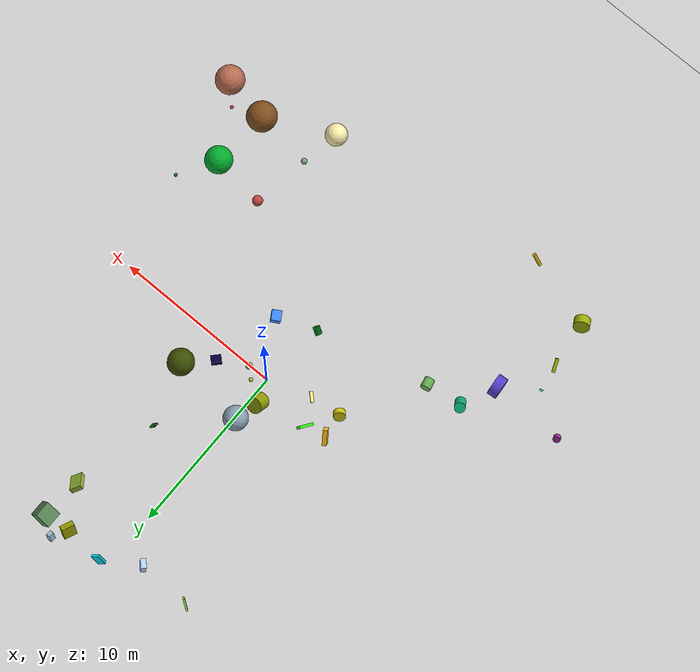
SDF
<?xml version="1.0" ?>
<sdf version="1.6">
  <world name="default">
    <atmosphere type="adiabatic"/>
    <light name="group/sun" type="directional">
      <direction>-0.5 0.1 -0.9</direction>
      <attenuation>
        <range>1000.0</range>
        <quadratic>0.001</quadratic>
        <constant>0.9</constant>
        <linear>0.01</linear>
      </attenuation>
      <pose frame="">0 0 20 0 -0 0</pose>
      <cast_shadows>1</cast_shadows>
      <specular>0.2 0.2 0.2 1</specular>
      <diffuse>0.8 0.8 0.8 1.0</diffuse>
    </light>
    <gravity>0 0 -9.8</gravity>
    <model name="cylinder">
      <allow_auto_disable>0</allow_auto_disable>
      <static>0</static>
      <pose frame="">-6.93001 -5.45701 0.344994 -1.85684 0.909253 3.14159</pose>
      <link name="link">
        <kinematic>0</kinematic>
        <inertial>
          <pose frame="">0 0 0 0 -0 0</pose>
          <mass>0.1</mass>
          <inertia>
            <ixz>0.0</ixz>
            <ixx>0.00507687553037</ixx>
            <ixy>0.0</ixy>
            <izz>0.00448108488609</izz>
            <iyy>0.00507687553037</iyy>
            <iyz>0.0</iyz>
          </inertia>
        </inertial>
        <pose frame="">0 0 0 0 -0 0</pose>
        <gravity>1</gravity>
        <self_collide>0</self_collide>
        <collision name="collision">
          <geometry>
            <cylinder>
              <length>0.583403779967</length>
              <radius>0.299368832248</radius>
            </cylinder>
          </geometry>
          <max_contacts>20</max_contacts>
          <pose frame="">0 0 0 0 -0 0</pose>
        </collision>
        <visual name="visual">
          <geometry>
            <cylinder>
              <length>0.583403779967</length>
              <radius>0.299368832248</radius>
            </cylinder>
          </geometry>
          <material>
            <diffuse>0.388235294118 0.662745098039 0.313725490196 1</diffuse>
            <ambient>0.388235 0.662745 0.313725 1</ambient>
          </material>
          <cast_shadows>1</cast_shadows>
          <transparency>0.0</transparency>
          <pose frame="">0 0 0 0 -0 0</pose>
        </visual>
      </link>
      <self_collide>0</self_collide>
    </model>
    <model name="cuboid">
      <allow_auto_disable>0</allow_auto_disable>
      <static>0</static>
      <pose frame="">0.580374 13.4447 0.536732 -2.78135 -0.267707 2.12915</pose>
      <link name="link">
        <kinematic>0</kinematic>
        <inertial>
          <pose frame="">0 0 0 0 -0 0</pose>
          <mass>0.529006352331</mass>
          <inertia>
            <ixz>0.0</ixz>
            <ixx>0.0506313129869</ixx>
            <ixy>0.0</ixy>
            <izz>0.00977626473644</izz>
            <iyy>0.0430985198141</iyy>
            <iyz>0.0</iyz>
          </inertia>
        </inertial>
        <pose frame="">0 0 0 0 -0 0</pose>
        <gravity>1</gravity>
        <self_collide>0</self_collide>
        <collision name="collision">
          <geometry>
            <box>
              <size>0.159516 0.44308 0.975809</size>
            </box>
          </geometry>
          <max_contacts>20</max_contacts>
          <pose frame="">0 0 0 0 -0 0</pose>
        </collision>
        <visual name="visual">
          <geometry>
            <box>
              <size>0.159516 0.44308 0.975809</size>
            </box>
          </geometry>
          <material>
            <diffuse>0.0078431372549 0.847058823529 0.913725490196 1</diffuse>
            <ambient>0.00784314 0.847059 0.913725 1</ambient>
          </material>
          <cast_shadows>1</cast_shadows>
          <transparency>0.0</transparency>
          <pose frame="">0 0 0 0 -0 0</pose>
        </visual>
      </link>
      <self_collide>0</self_collide>
    </model>
    <model name="cuboid_7">
      <allow_auto_disable>0</allow_auto_disable>
      <static>0</static>
      <pose frame="">4.36679 13.4451 0.642612 1.39601 0.503686 3.08399</pose>
      <link name="link">
        <kinematic>0</kinematic>
        <inertial>
          <pose frame="">0 0 0 0 -0 0</pose>
          <mass>0.1</mass>
          <inertia>
            <ixz>0.0</ixz>
            <ixx>0.0126403351712</ixx>
            <ixy>0.0</ixy>
            <izz>0.0129548047615</izz>
            <iyy>0.0156123974717</iyy>
            <iyz>0.0</iyz>
          </inertia>
        </inertial>
        <pose frame="">0 0 0 0 -0 0</pose>
        <gravity>1</gravity>
        <self_collide>0</self_collide>
        <collision name="collision">
          <geometry>
            <box>
              <size>0.977554 0.773928 0.958058</size>
            </box>
          </geometry>
          <max_contacts>20</max_contacts>
          <pose frame="">0 0 0 0 -0 0</pose>
        </collision>
        <visual name="visual">
          <geometry>
            <box>
              <size>0.977554 0.773928 0.958058</size>
            </box>
          </geometry>
          <material>
            <diffuse>0.349019607843 0.521568627451 0.337254901961 1</diffuse>
            <ambient>0.34902 0.521569 0.337255 1</ambient>
          </material>
          <cast_shadows>1</cast_shadows>
          <transparency>0.0</transparency>
          <pose frame="">0 0 0 0 -0 0</pose>
        </visual>
      </link>
      <self_collide>0</self_collide>
    </model>
    <model name="cuboid_6">
      <allow_auto_disable>0</allow_auto_disable>
      <static>0</static>
      <pose frame="">-4.57856 12.2801 0.362895 -1.50003 -1.08608 2.45211</pose>
      <link name="link">
        <kinematic>0</kinematic>
        <inertial>
          <pose frame="">0 0 0 0 -0 0</pose>
          <mass>0.287173806674</mass>
          <inertia>
            <ixz>0.0</ixz>
            <ixx>0.0119539335067</ixx>
            <ixy>0.0</ixy>
            <izz>0.0165521025375</izz>
            <iyy>0.00504706651455</iyy>
            <iyz>0.0</iyz>
          </inertia>
        </inertial>
        <pose frame="">0 0 0 0 -0 0</pose>
        <gravity>1</gravity>
        <self_collide>0</self_collide>
        <collision name="collision">
          <geometry>
            <box>
              <size>0.44891 0.700096 0.0968449</size>
            </box>
          </geometry>
          <max_contacts>20</max_contacts>
          <pose frame="">0 0 0 0 -0 0</pose>
        </collision>
        <visual name="visual">
          <geometry>
            <box>
              <size>0.44891 0.700096 0.0968449</size>
            </box>
          </geometry>
          <material>
            <diffuse>0.556862745098 0.898039215686 0.247058823529 1</diffuse>
            <ambient>0.556863 0.898039 0.247059 1</ambient>
          </material>
          <cast_shadows>1</cast_shadows>
          <transparency>0.0</transparency>
          <pose frame="">0 0 0 0 -0 0</pose>
        </visual>
      </link>
      <self_collide>0</self_collide>
    </model>
    <model name="cuboid_5">
      <allow_auto_disable>0</allow_auto_disable>
      <static>0</static>
      <pose frame="">3.08966 5.94231 0.332177 1.63594 0.45551 1.3895</pose>
      <link name="link">
        <kinematic>0</kinematic>
        <inertial>
          <pose frame="">0 0 0 0 -0 0</pose>
          <mass>0.982979262347</mass>
          <inertia>
            <ixz>0.0</ixz>
            <ixx>0.0309987722369</ixx>
            <ixy>0.0</ixy>
            <izz>0.0356702893538</izz>
            <iyy>0.00659763368988</iyy>
            <iyz>0.0</iyz>
          </inertia>
        </inertial>
        <pose frame="">0 0 0 0 -0 0</pose>
        <gravity>1</gravity>
        <self_collide>0</self_collide>
        <collision name="collision">
          <geometry>
            <box>
              <size>0.26227 0.605532 0.108429</size>
            </box>
          </geometry>
          <max_contacts>20</max_contacts>
          <pose frame="">0 0 0 0 -0 0</pose>
        </collision>
        <visual name="visual">
          <geometry>
            <box>
              <size>0.26227 0.605532 0.108429</size>
            </box>
          </geometry>
          <material>
            <diffuse>0.0156862745098 0.290196078431 0.0196078431373 1</diffuse>
            <ambient>0.0156863 0.290196 0.0196078 1</ambient>
          </material>
          <cast_shadows>1</cast_shadows>
          <transparency>0.0</transparency>
          <pose frame="">0 0 0 0 -0 0</pose>
        </visual>
      </link>
      <self_collide>0</self_collide>
    </model>
    <model name="cuboid_4">
      <allow_auto_disable>0</allow_auto_disable>
      <static>0</static>
      <pose frame="">2.88187 13.2986 0.470555 -1.3239 -1.00695 -0.593757</pose>
      <link name="link">
        <kinematic>0</kinematic>
        <inertial>
          <pose frame="">0 0 0 0 -0 0</pose>
          <mass>0.377872974586</mass>
          <inertia>
            <ixz>0.0</ixz>
            <ixx>0.0219392592166</ixx>
            <ixy>0.0</ixy>
            <izz>0.0230275994609</izz>
            <iyy>0.0363302419362</iyy>
            <iyz>0.0</iyz>
          </inertia>
        </inertial>
        <pose frame="">0 0 0 0 -0 0</pose>
        <gravity>1</gravity>
        <self_collide>0</self_collide>
        <collision name="collision">
          <geometry>
            <box>
              <size>0.770808 0.370318 0.748053</size>
            </box>
          </geometry>
          <max_contacts>20</max_contacts>
          <pose frame="">0 0 0 0 -0 0</pose>
        </collision>
        <visual name="visual">
          <geometry>
            <box>
              <size>0.770808 0.370318 0.748053</size>
            </box>
          </geometry>
          <material>
            <diffuse>0.572549019608 0.6 0.00392156862745 1</diffuse>
            <ambient>0.572549 0.6 0.00392157 1</ambient>
          </material>
          <cast_shadows>1</cast_shadows>
          <transparency>0.0</transparency>
          <pose frame="">0 0 0 0 -0 0</pose>
        </visual>
      </link>
      <self_collide>0</self_collide>
    </model>
    <model name="cuboid_3">
      <allow_auto_disable>0</allow_auto_disable>
      <static>0</static>
      <pose frame="">-1.46834 12.1439 0.445225 3.02049 -0.141592 2.33851</pose>
      <link name="link">
        <kinematic>0</kinematic>
        <inertial>
          <pose frame="">0 0 0 0 -0 0</pose>
          <mass>0.495479816116</mass>
          <inertia>
            <ixz>0.0</ixz>
            <ixx>0.0295370033184</ixx>
            <ixy>0.0</ixy>
            <izz>0.0170319606236</izz>
            <iyy>0.0387294047357</iyy>
            <iyz>0.0</iyz>
          </inertia>
        </inertial>
        <pose frame="">0 0 0 0 -0 0</pose>
        <gravity>1</gravity>
        <self_collide>0</self_collide>
        <collision name="collision">
          <geometry>
            <box>
              <size>0.563527 0.308112 0.787669</size>
            </box>
          </geometry>
          <max_contacts>20</max_contacts>
          <pose frame="">0 0 0 0 -0 0</pose>
        </collision>
        <visual name="visual">
          <geometry>
            <box>
              <size>0.563527 0.308112 0.787669</size>
            </box>
          </geometry>
          <material>
            <diffuse>0.694117647059 0.819607843137 0.988235294118 1</diffuse>
            <ambient>0.694118 0.819608 0.988235 1</ambient>
          </material>
          <cast_shadows>1</cast_shadows>
          <transparency>0.0</transparency>
          <pose frame="">0 0 0 0 -0 0</pose>
        </visual>
      </link>
      <self_collide>0</self_collide>
    </model>
    <model name="cuboid_2">
      <allow_auto_disable>0</allow_auto_disable>
      <static>0</static>
      <pose frame="">3.40791 14.163 0.326014 0.535984 -1.08211 -0.516917</pose>
      <link name="link">
        <kinematic>0</kinematic>
        <inertial>
          <pose frame="">0 0 0 0 -0 0</pose>
          <mass>0.934717956888</mass>
          <inertia>
            <ixz>0.0</ixz>
            <ixx>0.0137247366548</ixx>
            <ixy>0.0</ixy>
            <izz>0.0295227432888</izz>
            <iyy>0.0274601663073</iyy>
            <iyz>0.0</iyz>
          </inertia>
        </inertial>
        <pose frame="">0 0 0 0 -0 0</pose>
        <gravity>1</gravity>
        <self_collide>0</self_collide>
        <collision name="collision">
          <geometry>
            <box>
              <size>0.52695 0.318339 0.273606</size>
            </box>
          </geometry>
          <max_contacts>20</max_contacts>
          <pose frame="">0 0 0 0 -0 0</pose>
        </collision>
        <visual name="visual">
          <geometry>
            <box>
              <size>0.52695 0.318339 0.273606</size>
            </box>
          </geometry>
          <material>
            <diffuse>0.61568627451 0.737254901961 0.83137254902 1</diffuse>
            <ambient>0.615686 0.737255 0.831373 1</ambient>
          </material>
          <cast_shadows>1</cast_shadows>
          <transparency>0.0</transparency>
          <pose frame="">0 0 0 0 -0 0</pose>
        </visual>
      </link>
      <self_collide>0</self_collide>
    </model>
    <model name="cuboid_1">
      <allow_auto_disable>0</allow_auto_disable>
      <static>0</static>
      <pose frame="">4.2052 11.0437 0.531606 -1.0258 -0.583617 2.24076</pose>
      <link name="link">
        <kinematic>0</kinematic>
        <inertial>
          <pose frame="">0 0 0 0 -0 0</pose>
          <mass>0.695382150924</mass>
          <inertia>
            <ixz>0.0</ixz>
            <ixx>0.0339695223788</ixx>
            <ixy>0.0</ixy>
            <izz>0.0616042057807</izz>
            <iyy>0.0849837000789</iyy>
            <iyz>0.0</iyz>
          </inertia>
        </inertial>
        <pose frame="">0 0 0 0 -0 0</pose>
        <gravity>1</gravity>
        <self_collide>0</self_collide>
        <collision name="collision">
          <geometry>
            <box>
              <size>0.985754 0.302282 0.70344</size>
            </box>
          </geometry>
          <max_contacts>20</max_contacts>
          <pose frame="">0 0 0 0 -0 0</pose>
        </collision>
        <visual name="visual">
          <geometry>
            <box>
              <size>0.985754 0.302282 0.70344</size>
            </box>
          </geometry>
          <material>
            <diffuse>0.564705882353 0.694117647059 0.203921568627 1</diffuse>
            <ambient>0.564706 0.694118 0.203922 1</ambient>
          </material>
          <cast_shadows>1</cast_shadows>
          <transparency>0.0</transparency>
          <pose frame="">0 0 0 0 -0 0</pose>
        </visual>
      </link>
      <self_collide>0</self_collide>
    </model>
    <model name="cylinder_11">
      <allow_auto_disable>0</allow_auto_disable>
      <static>0</static>
      <pose frame="">-0.366086 -3.87402 0.279585 -2.75394 -1.12864 2.22518</pose>
      <link name="link">
        <kinematic>0</kinematic>
        <inertial>
          <pose frame="">0 0 0 0 -0 0</pose>
          <mass>0.1</mass>
          <inertia>
            <ixz>0.0</ixz>
            <ixx>0.00286144263493</ixx>
            <ixy>0.0</ixy>
            <izz>0.00207208020715</izz>
            <iyy>0.00286144263493</iyy>
            <iyz>0.0</iyz>
          </inertia>
        </inertial>
        <pose frame="">0 0 0 0 -0 0</pose>
        <gravity>1</gravity>
        <self_collide>0</self_collide>
        <collision name="collision">
          <geometry>
            <cylinder>
              <length>0.468025964838</length>
              <radius>0.203572110425</radius>
            </cylinder>
          </geometry>
          <max_contacts>20</max_contacts>
          <pose frame="">0 0 0 0 -0 0</pose>
        </collision>
        <visual name="visual">
          <geometry>
            <cylinder>
              <length>0.468025964838</length>
              <radius>0.203572110425</radius>
            </cylinder>
          </geometry>
          <material>
            <diffuse>0.0078431372549 0.349019607843 0.0588235294118 1</diffuse>
            <ambient>0.00784314 0.34902 0.0588235 1</ambient>
          </material>
          <cast_shadows>1</cast_shadows>
          <transparency>0.0</transparency>
          <pose frame="">0 0 0 0 -0 0</pose>
        </visual>
      </link>
      <self_collide>0</self_collide>
    </model>
    <model name="cylinder_10">
      <allow_auto_disable>0</allow_auto_disable>
      <static>0</static>
      <pose frame="">-2.49195 -0.843274 0.116381 -1.47678 -0.956003 -2.39792</pose>
      <link name="link">
        <kinematic>0</kinematic>
        <inertial>
          <pose frame="">0 0 0 0 -0 0</pose>
          <mass>0.957271370767</mass>
          <inertia>
            <ixz>0.0</ixz>
            <ixx>0.0322209341839</ixx>
            <ixy>0.0</ixy>
            <izz>0.00478635685383</izz>
            <iyy>0.0322209341839</iyy>
            <iyz>0.0</iyz>
          </inertia>
        </inertial>
        <pose frame="">0 0 0 0 -0 0</pose>
        <gravity>1</gravity>
        <self_collide>0</self_collide>
        <collision name="collision">
          <geometry>
            <cylinder>
              <length>0.611481576849</length>
              <radius>0.1</radius>
            </cylinder>
          </geometry>
          <max_contacts>20</max_contacts>
          <pose frame="">0 0 0 0 -0 0</pose>
        </collision>
        <visual name="visual">
          <geometry>
            <cylinder>
              <length>0.611481576849</length>
              <radius>0.1</radius>
            </cylinder>
          </geometry>
          <material>
            <diffuse>0.988235294118 0.964705882353 0.474509803922 1</diffuse>
            <ambient>0.988235 0.964706 0.47451 1</ambient>
          </material>
          <cast_shadows>1</cast_shadows>
          <transparency>0.0</transparency>
          <pose frame="">0 0 0 0 -0 0</pose>
        </visual>
      </link>
      <self_collide>0</self_collide>
    </model>
    <model name="cuboid_9">
      <allow_auto_disable>0</allow_auto_disable>
      <static>0</static>
      <pose frame="">2.82684 0.980504 0.384691 0.8536 -1.5539 -1.59805</pose>
      <link name="link">
        <kinematic>0</kinematic>
        <inertial>
          <pose frame="">0 0 0 0 -0 0</pose>
          <mass>0.414218791604</mass>
          <inertia>
            <ixz>0.0</ixz>
            <ixx>0.0177186184046</ixx>
            <ixy>0.0</ixy>
            <izz>0.0315786744776</izz>
            <iyy>0.025747798483</iyy>
            <iyz>0.0</iyz>
          </inertia>
        </inertial>
        <pose frame="">0 0 0 0 -0 0</pose>
        <gravity>1</gravity>
        <self_collide>0</self_collide>
        <collision name="collision">
          <geometry>
            <box>
              <size>0.757445 0.584052 0.414964</size>
            </box>
          </geometry>
          <max_contacts>20</max_contacts>
          <pose frame="">0 0 0 0 -0 0</pose>
        </collision>
        <visual name="visual">
          <geometry>
            <box>
              <size>0.757445 0.584052 0.414964</size>
            </box>
          </geometry>
          <material>
            <diffuse>0.0078431372549 0.0 0.207843137255 1</diffuse>
            <ambient>0.00784314 0 0.207843 1</ambient>
          </material>
          <cast_shadows>1</cast_shadows>
          <transparency>0.0</transparency>
          <pose frame="">0 0 0 0 -0 0</pose>
        </visual>
      </link>
      <self_collide>0</self_collide>
    </model>
    <model name="cuboid_8">
      <allow_auto_disable>0</allow_auto_disable>
      <static>0</static>
      <pose frame="">-3.29062 0.680449 0.475551 1.40354 0.15515 2.53182</pose>
      <link name="link">
        <kinematic>0</kinematic>
        <inertial>
          <pose frame="">0 0 0 0 -0 0</pose>
          <mass>0.242392414289</mass>
          <inertia>
            <ixz>0.0</ixz>
            <ixx>0.0259059998427</ixx>
            <ixy>0.0</ixy>
            <izz>0.0140615975416</izz>
            <iyy>0.012957976547</iyy>
            <iyz>0.0</iyz>
          </inertia>
        </inertial>
        <pose frame="">0 0 0 0 -0 0</pose>
        <gravity>1</gravity>
        <self_collide>0</self_collide>
        <collision name="collision">
          <geometry>
            <box>
              <size>0.166026 0.817665 0.783543</size>
            </box>
          </geometry>
          <max_contacts>20</max_contacts>
          <pose frame="">0 0 0 0 -0 0</pose>
        </collision>
        <visual name="visual">
          <geometry>
            <box>
              <size>0.166026 0.817665 0.783543</size>
            </box>
          </geometry>
          <material>
            <diffuse>0.18431372549 0.937254901961 0.0627450980392 1</diffuse>
            <ambient>0.184314 0.937255 0.0627451 1</ambient>
          </material>
          <cast_shadows>1</cast_shadows>
          <transparency>0.0</transparency>
          <pose frame="">0 0 0 0 -0 0</pose>
        </visual>
      </link>
      <self_collide>0</self_collide>
    </model>
    <model name="cylinder_9">
      <allow_auto_disable>0</allow_auto_disable>
      <static>0</static>
      <pose frame="">-0.497576 1.36935 0.627994 0.799602 -0.262922 -3.00813</pose>
      <link name="link">
        <kinematic>0</kinematic>
        <inertial>
          <pose frame="">0 0 0 0 -0 0</pose>
          <mass>0.802376030185</mass>
          <inertia>
            <ixz>0.0</ixz>
            <ixx>0.0898197463619</ixx>
            <ixy>0.0</ixy>
            <izz>0.09694566739</izz>
            <iyy>0.0898197463619</iyy>
            <iyz>0.0</iyz>
          </inertia>
        </inertial>
        <pose frame="">0 0 0 0 -0 0</pose>
        <gravity>1</gravity>
        <self_collide>0</self_collide>
        <collision name="collision">
          <geometry>
            <cylinder>
              <length>0.786363221632</length>
              <radius>0.491575497094</radius>
            </cylinder>
          </geometry>
          <max_contacts>20</max_contacts>
          <pose frame="">0 0 0 0 -0 0</pose>
        </collision>
        <visual name="visual">
          <geometry>
            <cylinder>
              <length>0.786363221632</length>
              <radius>0.491575497094</radius>
            </cylinder>
          </geometry>
          <material>
            <diffuse>0.560784313725 0.596078431373 0.0196078431373 1</diffuse>
            <ambient>0.560784 0.596078 0.0196078 1</ambient>
          </material>
          <cast_shadows>1</cast_shadows>
          <transparency>0.0</transparency>
          <pose frame="">0 0 0 0 -0 0</pose>
        </visual>
      </link>
      <self_collide>0</self_collide>
    </model>
    <model name="cylinder_8">
      <allow_auto_disable>0</allow_auto_disable>
      <static>0</static>
      <pose frame="">-4.32113 -1.03304 0.388921 -0.935629 0.220947 0.874415</pose>
      <link name="link">
        <kinematic>0</kinematic>
        <inertial>
          <pose frame="">0 0 0 0 -0 0</pose>
          <mass>0.106306112564</mass>
          <inertia>
            <ixz>0.0</ixz>
            <ixx>0.00440659825704</ixx>
            <ixy>0.0</ixy>
            <izz>0.00628173234363</izz>
            <iyy>0.00440659825704</iyy>
            <iyz>0.0</iyz>
          </inertia>
        </inertial>
        <pose frame="">0 0 0 0 -0 0</pose>
        <gravity>1</gravity>
        <self_collide>0</self_collide>
        <collision name="collision">
          <geometry>
            <cylinder>
              <length>0.377991817928</length>
              <radius>0.343776030982</radius>
            </cylinder>
          </geometry>
          <max_contacts>20</max_contacts>
          <pose frame="">0 0 0 0 -0 0</pose>
        </collision>
        <visual name="visual">
          <geometry>
            <cylinder>
              <length>0.377991817928</length>
              <radius>0.343776030982</radius>
            </cylinder>
          </geometry>
          <material>
            <diffuse>0.780392156863 0.756862745098 0.0470588235294 1</diffuse>
            <ambient>0.780392 0.756863 0.0470588 1</ambient>
          </material>
          <cast_shadows>1</cast_shadows>
          <transparency>0.0</transparency>
          <pose frame="">0 0 0 0 -0 0</pose>
        </visual>
      </link>
      <self_collide>0</self_collide>
    </model>
    <model name="cuboid_11">
      <allow_auto_disable>0</allow_auto_disable>
      <static>0</static>
      <pose frame="">1.89002 -3.01667 0.284221 -0.825075 -1.36712 -1.77059</pose>
      <link name="link">
        <kinematic>0</kinematic>
        <inertial>
          <pose frame="">0 0 0 0 -0 0</pose>
          <mass>0.404423740752</mass>
          <inertia>
            <ixz>0.0</ixz>
            <ixx>0.0239850894067</ixx>
            <ixy>0.0</ixy>
            <izz>0.0189306304132</izz>
            <iyy>0.0161775198947</iyy>
            <iyz>0.0</iyz>
          </inertia>
        </inertial>
        <pose frame="">0 0 0 0 -0 0</pose>
        <gravity>1</gravity>
        <self_collide>0</self_collide>
        <collision name="collision">
          <geometry>
            <box>
              <size>0.406228 0.62983 0.561245</size>
            </box>
          </geometry>
          <max_contacts>20</max_contacts>
          <pose frame="">0 0 0 0 -0 0</pose>
        </collision>
        <visual name="visual">
          <geometry>
            <box>
              <size>0.406228 0.62983 0.561245</size>
            </box>
          </geometry>
          <material>
            <diffuse>0.243137254902 0.509803921569 0.988235294118 1</diffuse>
            <ambient>0.243137 0.509804 0.988235 1</ambient>
          </material>
          <cast_shadows>1</cast_shadows>
          <transparency>0.0</transparency>
          <pose frame="">0 0 0 0 -0 0</pose>
        </visual>
      </link>
      <self_collide>0</self_collide>
    </model>
    <model name="cuboid_10">
      <allow_auto_disable>0</allow_auto_disable>
      <static>0</static>
      <pose frame="">-4.51358 0.411488 0.466024 2.92988 0.859463 -1.21966</pose>
      <link name="link">
        <kinematic>0</kinematic>
        <inertial>
          <pose frame="">0 0 0 0 -0 0</pose>
          <mass>0.1</mass>
          <inertia>
            <ixz>0.0</ixz>
            <ixx>0.00846837706243</ixx>
            <ixy>0.0</ixy>
            <izz>0.00164591361248</izz>
            <iyy>0.0090132596832</iyy>
            <iyz>0.0</iyz>
          </inertia>
        </inertial>
        <pose frame="">0 0 0 0 -0 0</pose>
        <gravity>1</gravity>
        <self_collide>0</self_collide>
        <collision name="collision">
          <geometry>
            <box>
              <size>0.362557 0.257025 0.974753</size>
            </box>
          </geometry>
          <max_contacts>20</max_contacts>
          <pose frame="">0 0 0 0 -0 0</pose>
        </collision>
        <visual name="visual">
          <geometry>
            <box>
              <size>0.362557 0.257025 0.974753</size>
            </box>
          </geometry>
          <material>
            <diffuse>0.992156862745 0.725490196078 0.0823529411765 1</diffuse>
            <ambient>0.992157 0.72549 0.0823529 1</ambient>
          </material>
          <cast_shadows>1</cast_shadows>
          <transparency>0.0</transparency>
          <pose frame="">0 0 0 0 -0 0</pose>
        </visual>
      </link>
      <self_collide>0</self_collide>
    </model>
    <model name="cylinder_1">
      <allow_auto_disable>0</allow_auto_disable>
      <static>0</static>
      <pose frame="">-11.3162 -13.4836 0.543062 2.25576 -0.710765 -7.3247e-17</pose>
      <link name="link">
        <kinematic>0</kinematic>
        <inertial>
          <pose frame="">0 0 0 0 -0 0</pose>
          <mass>0.533090225414</mass>
          <inertia>
            <ixz>0.0</ixz>
            <ixx>0.0428235636171</ixx>
            <ixy>0.0</ixy>
            <izz>0.0584988648754</izz>
            <iyy>0.0428235636171</iyy>
            <iyz>0.0</iyz>
          </inertia>
        </inertial>
        <pose frame="">0 0 0 0 -0 0</pose>
        <gravity>1</gravity>
        <self_collide>0</self_collide>
        <collision name="collision">
          <geometry>
            <cylinder>
              <length>0.552772315587</length>
              <radius>0.468477090228</radius>
            </cylinder>
          </geometry>
          <max_contacts>20</max_contacts>
          <pose frame="">0 0 0 0 -0 0</pose>
        </collision>
        <visual name="visual">
          <geometry>
            <cylinder>
              <length>0.552772315587</length>
              <radius>0.468477090228</radius>
            </cylinder>
          </geometry>
          <material>
            <diffuse>0.603921568627 0.682352941176 0.0274509803922 1</diffuse>
            <ambient>0.603922 0.682353 0.027451 1</ambient>
          </material>
          <cast_shadows>1</cast_shadows>
          <transparency>0.0</transparency>
          <pose frame="">0 0 0 0 -0 0</pose>
        </visual>
      </link>
      <self_collide>0</self_collide>
    </model>
    <model name="cylinder_3">
      <allow_auto_disable>0</allow_auto_disable>
      <static>0</static>
      <pose frame="">-7.14561 -14.7264 0.436541 3.04939 -0.631144 3.14159</pose>
      <link name="link">
        <kinematic>0</kinematic>
        <inertial>
          <pose frame="">0 0 0 0 -0 0</pose>
          <mass>0.942717599088</mass>
          <inertia>
            <ixz>0.0</ixz>
            <ixx>0.0715422859981</ixx>
            <ixy>0.0</ixy>
            <izz>0.00471358799544</izz>
            <iyy>0.0715422859981</iyy>
            <iyz>0.0</iyz>
          </inertia>
        </inertial>
        <pose frame="">0 0 0 0 -0 0</pose>
        <gravity>1</gravity>
        <self_collide>0</self_collide>
        <collision name="collision">
          <geometry>
            <cylinder>
              <length>0.938441775451</length>
              <radius>0.1</radius>
            </cylinder>
          </geometry>
          <max_contacts>20</max_contacts>
          <pose frame="">0 0 0 0 -0 0</pose>
        </collision>
        <visual name="visual">
          <geometry>
            <cylinder>
              <length>0.938441775451</length>
              <radius>0.1</radius>
            </cylinder>
          </geometry>
          <material>
            <diffuse>0.835294117647 0.670588235294 0.0352941176471 1</diffuse>
            <ambient>0.835294 0.670588 0.0352941 1</ambient>
          </material>
          <cast_shadows>1</cast_shadows>
          <transparency>0.0</transparency>
          <pose frame="">0 0 0 0 -0 0</pose>
        </visual>
      </link>
      <self_collide>0</self_collide>
    </model>
    <model name="cylinder_2">
      <allow_auto_disable>0</allow_auto_disable>
      <static>0</static>
      <pose frame="">-9.04846 -5.67966 0.523355 2.64515 -0.318983 -4.38451e-17</pose>
      <link name="link">
        <kinematic>0</kinematic>
        <inertial>
          <pose frame="">0 0 0 0 -0 0</pose>
          <mass>0.240832711453</mass>
          <inertia>
            <ixz>0.0</ixz>
            <ixx>0.0200989436225</ixx>
            <ixy>0.0</ixy>
            <izz>0.0117614179311</izz>
            <iyy>0.0200989436225</iyy>
            <iyz>0.0</iyz>
          </inertia>
        </inertial>
        <pose frame="">0 0 0 0 -0 0</pose>
        <gravity>1</gravity>
        <self_collide>0</self_collide>
        <collision name="collision">
          <geometry>
            <cylinder>
              <length>0.841696893206</length>
              <radius>0.312526682175</radius>
            </cylinder>
          </geometry>
          <max_contacts>20</max_contacts>
          <pose frame="">0 0 0 0 -0 0</pose>
        </collision>
        <visual name="visual">
          <geometry>
            <cylinder>
              <length>0.841696893206</length>
              <radius>0.312526682175</radius>
            </cylinder>
          </geometry>
          <material>
            <diffuse>0.0470588235294 0.709803921569 0.466666666667 1</diffuse>
            <ambient>0.0470588 0.709804 0.466667 1</ambient>
          </material>
          <cast_shadows>1</cast_shadows>
          <transparency>0.0</transparency>
          <pose frame="">0 0 0 0 -0 0</pose>
        </visual>
      </link>
      <self_collide>0</self_collide>
    </model>
    <model name="cylinder_5">
      <allow_auto_disable>0</allow_auto_disable>
      <static>0</static>
      <pose frame="">-11.9214 -9.23356 0.109398 1.84666 -0.37887 -3.14159</pose>
      <link name="link">
        <kinematic>0</kinematic>
        <inertial>
          <pose frame="">0 0 0 0 -0 0</pose>
          <mass>0.434460643683</mass>
          <inertia>
            <ixz>0.0</ixz>
            <ixx>0.00144820214561</ixx>
            <ixy>0.0</ixy>
            <izz>0.00217230321841</izz>
            <iyy>0.00144820214561</iyy>
            <iyz>0.0</iyz>
          </inertia>
        </inertial>
        <pose frame="">0 0 0 0 -0 0</pose>
        <gravity>1</gravity>
        <self_collide>0</self_collide>
        <collision name="collision">
          <geometry>
            <cylinder>
              <length>0.1</length>
              <radius>0.1</radius>
            </cylinder>
          </geometry>
          <max_contacts>20</max_contacts>
          <pose frame="">0 0 0 0 -0 0</pose>
        </collision>
        <visual name="visual">
          <geometry>
            <cylinder>
              <length>0.1</length>
              <radius>0.1</radius>
            </cylinder>
          </geometry>
          <material>
            <diffuse>0.388235294118 0.96862745098 0.705882352941 1</diffuse>
            <ambient>0.388235 0.968627 0.705882 1</ambient>
          </material>
          <cast_shadows>1</cast_shadows>
          <transparency>0.0</transparency>
          <pose frame="">0 0 0 0 -0 0</pose>
        </visual>
      </link>
      <self_collide>0</self_collide>
    </model>
    <model name="cylinder_4">
      <allow_auto_disable>0</allow_auto_disable>
      <static>0</static>
      <pose frame="">-14.27 -7.68716 0.239762 2.33682 -0.399593 0</pose>
      <link name="link">
        <kinematic>0</kinematic>
        <inertial>
          <pose frame="">0 0 0 0 -0 0</pose>
          <mass>0.453029930229</mass>
          <inertia>
            <ixz>0.0</ixz>
            <ixx>0.00727538712995</ixx>
            <ixy>0.0</ixy>
            <izz>0.0100550969746</izz>
            <iyy>0.00727538712995</iyy>
            <iyz>0.0</iyz>
          </inertia>
        </inertial>
        <pose frame="">0 0 0 0 -0 0</pose>
        <gravity>1</gravity>
        <self_collide>0</self_collide>
        <collision name="collision">
          <geometry>
            <cylinder>
              <length>0.244011189363</length>
              <radius>0.210690368075</radius>
            </cylinder>
          </geometry>
          <max_contacts>20</max_contacts>
          <pose frame="">0 0 0 0 -0 0</pose>
        </collision>
        <visual name="visual">
          <geometry>
            <cylinder>
              <length>0.244011189363</length>
              <radius>0.210690368075</radius>
            </cylinder>
          </geometry>
          <material>
            <diffuse>0.58431372549 0.180392156863 0.560784313725 1</diffuse>
            <ambient>0.584314 0.180392 0.560784 1</ambient>
          </material>
          <cast_shadows>1</cast_shadows>
          <transparency>0.0</transparency>
          <pose frame="">0 0 0 0 -0 0</pose>
        </visual>
      </link>
      <self_collide>0</self_collide>
    </model>
    <model name="cylinder_7">
      <allow_auto_disable>0</allow_auto_disable>
      <static>0</static>
      <pose frame="">-9.98036 -7.76813 0.632888 -3.05912 -1.56616 -3.14159</pose>
      <link name="link">
        <kinematic>0</kinematic>
        <inertial>
          <pose frame="">0 0 0 0 -0 0</pose>
          <mass>0.1</mass>
          <inertia>
            <ixz>0.0</ixz>
            <ixx>0.0125419298623</ixx>
            <ixy>0.0</ixy>
            <izz>0.0199467528686</izz>
            <iyy>0.0125419298623</iyy>
            <iyz>0.0</iyz>
          </inertia>
        </inertial>
        <pose frame="">0 0 0 0 -0 0</pose>
        <gravity>1</gravity>
        <self_collide>0</self_collide>
        <collision name="collision">
          <geometry>
            <cylinder>
              <length>0.555181422019</length>
              <radius>0.631613059849</radius>
            </cylinder>
          </geometry>
          <max_contacts>20</max_contacts>
          <pose frame="">0 0 0 0 -0 0</pose>
        </collision>
        <visual name="visual">
          <geometry>
            <cylinder>
              <length>0.555181422019</length>
              <radius>0.631613059849</radius>
            </cylinder>
          </geometry>
          <material>
            <diffuse>0.325490196078 0.235294117647 0.776470588235 1</diffuse>
            <ambient>0.32549 0.235294 0.776471 1</ambient>
          </material>
          <cast_shadows>1</cast_shadows>
          <transparency>0.0</transparency>
          <pose frame="">0 0 0 0 -0 0</pose>
        </visual>
      </link>
      <self_collide>0</self_collide>
    </model>
    <model name="cylinder_6">
      <allow_auto_disable>0</allow_auto_disable>
      <static>0</static>
      <pose frame="">-11.6469 -10.7893 0.226284 -2.08479 0.831854 2.47263e-16</pose>
      <link name="link">
        <kinematic>0</kinematic>
        <inertial>
          <pose frame="">0 0 0 0 -0 0</pose>
          <mass>0.1</mass>
          <inertia>
            <ixz>0.0</ixz>
            <ixx>0.00556608009483</ixx>
            <ixy>0.0</ixy>
            <izz>0.0005</izz>
            <iyy>0.00556608009483</iyy>
            <iyz>0.0</iyz>
          </inertia>
        </inertial>
        <pose frame="">0 0 0 0 -0 0</pose>
        <gravity>1</gravity>
        <self_collide>0</self_collide>
        <collision name="collision">
          <geometry>
            <cylinder>
              <length>0.798704958905</length>
              <radius>0.1</radius>
            </cylinder>
          </geometry>
          <max_contacts>20</max_contacts>
          <pose frame="">0 0 0 0 -0 0</pose>
        </collision>
        <visual name="visual">
          <geometry>
            <cylinder>
              <length>0.798704958905</length>
              <radius>0.1</radius>
            </cylinder>
          </geometry>
          <material>
            <diffuse>0.580392156863 0.674509803922 0.0078431372549 1</diffuse>
            <ambient>0.580392 0.67451 0.00784314 1</ambient>
          </material>
          <cast_shadows>1</cast_shadows>
          <transparency>0.0</transparency>
          <pose frame="">0 0 0 0 -0 0</pose>
        </visual>
      </link>
      <self_collide>0</self_collide>
    </model>
    <model name="ball">
      <allow_auto_disable>0</allow_auto_disable>
      <static>0</static>
      <pose frame="">6.25908 -6.72245 4 0 -0 0</pose>
      <link name="link">
        <kinematic>0</kinematic>
        <inertial>
          <pose frame="">0 0 0 0 -0 0</pose>
          <mass>0.949629606744</mass>
          <inertia>
            <ixz>0.0</ixz>
            <ixx>0.0334486901762</ixx>
            <ixy>0.0</ixy>
            <izz>0.0334486901762</izz>
            <iyy>0.0334486901762</iyy>
            <iyz>0.0</iyz>
          </inertia>
        </inertial>
        <pose frame="">0 0 0 0 -0 0</pose>
        <gravity>1</gravity>
        <self_collide>0</self_collide>
        <collision name="collision">
          <geometry>
            <sphere>
              <radius>0.296744336591</radius>
            </sphere>
          </geometry>
          <max_contacts>20</max_contacts>
          <pose frame="">0 0 0 0 -0 0</pose>
        </collision>
        <visual name="visual">
          <geometry>
            <sphere>
              <radius>0.296744336591</radius>
            </sphere>
          </geometry>
          <material>
            <diffuse>0.76862745098 0.258823529412 0.250980392157 1</diffuse>
            <ambient>0.768627 0.258824 0.25098 1</ambient>
          </material>
          <cast_shadows>1</cast_shadows>
          <transparency>0.0</transparency>
          <pose frame="">0 0 0 0 -0 0</pose>
        </visual>
      </link>
      <self_collide>0</self_collide>
    </model>
    <model name="ball_10">
      <allow_auto_disable>0</allow_auto_disable>
      <static>0</static>
      <pose frame="">-0.132458 2.79995 0.716379 -0.929258 0.2265 -2.92427</pose>
      <link name="link">
        <kinematic>0</kinematic>
        <inertial>
          <pose frame="">0 0 0 0 -0 0</pose>
          <mass>0.687658888939</mass>
          <inertia>
            <ixz>0.0</ixz>
            <ixx>0.141332495964</ixx>
            <ixy>0.0</ixy>
            <izz>0.141332495964</izz>
            <iyy>0.141332495964</iyy>
            <iyz>0.0</iyz>
          </inertia>
        </inertial>
        <pose frame="">0 0 0 0 -0 0</pose>
        <gravity>1</gravity>
        <self_collide>0</self_collide>
        <collision name="collision">
          <geometry>
            <sphere>
              <radius>0.716810714183</radius>
            </sphere>
          </geometry>
          <max_contacts>20</max_contacts>
          <pose frame="">0 0 0 0 -0 0</pose>
        </collision>
        <visual name="visual">
          <geometry>
            <sphere>
              <radius>0.716810714183</radius>
            </sphere>
          </geometry>
          <material>
            <diffuse>0.537254901961 0.627450980392 0.690196078431 1</diffuse>
            <ambient>0.537255 0.627451 0.690196 1</ambient>
          </material>
          <cast_shadows>1</cast_shadows>
          <transparency>0.0</transparency>
          <pose frame="">0 0 0 0 -0 0</pose>
        </visual>
      </link>
      <self_collide>0</self_collide>
    </model>
    <model name="ball_8">
      <allow_auto_disable>0</allow_auto_disable>
      <static>0</static>
      <pose frame="">4.18172 2.36405 0.778426 -0.0920474 -0.304074 0.124605</pose>
      <link name="link">
        <kinematic>0</kinematic>
        <inertial>
          <pose frame="">0 0 0 0 -0 0</pose>
          <mass>0.221141020888</mass>
          <inertia>
            <ixz>0.0</ixz>
            <ixx>0.0539730119801</ixx>
            <ixy>0.0</ixy>
            <izz>0.0539730119801</izz>
            <iyy>0.0539730119801</iyy>
            <iyz>0.0</iyz>
          </inertia>
        </inertial>
        <pose frame="">0 0 0 0 -0 0</pose>
        <gravity>1</gravity>
        <self_collide>0</self_collide>
        <collision name="collision">
          <geometry>
            <sphere>
              <radius>0.781130645697</radius>
            </sphere>
          </geometry>
          <max_contacts>20</max_contacts>
          <pose frame="">0 0 0 0 -0 0</pose>
        </collision>
        <visual name="visual">
          <geometry>
            <sphere>
              <radius>0.781130645697</radius>
            </sphere>
          </geometry>
          <material>
            <diffuse>0.235294117647 0.301960784314 0.0117647058824 1</diffuse>
            <ambient>0.235294 0.301961 0.0117647 1</ambient>
          </material>
          <cast_shadows>1</cast_shadows>
          <transparency>0.0</transparency>
          <pose frame="">0 0 0 0 -0 0</pose>
        </visual>
      </link>
      <self_collide>0</self_collide>
    </model>
    <model name="ball_9">
      <allow_auto_disable>0</allow_auto_disable>
      <static>0</static>
      <pose frame="">1.25394 0.0480333 0.200325 -1.08318 -0.0308755 2.38685</pose>
      <link name="link">
        <kinematic>0</kinematic>
        <inertial>
          <pose frame="">0 0 0 0 -0 0</pose>
          <mass>0.631674975634</mass>
          <inertia>
            <ixz>0.0</ixz>
            <ixx>0.010193673656</ixx>
            <ixy>0.0</ixy>
            <izz>0.010193673656</izz>
            <iyy>0.010193673656</iyy>
            <iyz>0.0</iyz>
          </inertia>
        </inertial>
        <pose frame="">0 0 0 0 -0 0</pose>
        <gravity>1</gravity>
        <self_collide>0</self_collide>
        <collision name="collision">
          <geometry>
            <sphere>
              <radius>0.200857721174</radius>
            </sphere>
          </geometry>
          <max_contacts>20</max_contacts>
          <pose frame="">0 0 0 0 -0 0</pose>
        </collision>
        <visual name="visual">
          <geometry>
            <sphere>
              <radius>0.200857721174</radius>
            </sphere>
          </geometry>
          <material>
            <diffuse>0.560784313725 0.682352941176 0.133333333333 1</diffuse>
            <ambient>0.560784 0.682353 0.133333 1</ambient>
          </material>
          <cast_shadows>1</cast_shadows>
          <transparency>0.0</transparency>
          <pose frame="">0 0 0 0 -0 0</pose>
        </visual>
      </link>
      <self_collide>0</self_collide>
    </model>
    <model name="ball_11">
      <allow_auto_disable>0</allow_auto_disable>
      <static>0</static>
      <pose frame="">0.684965 0.564347 0.116318 3.05184 1.15725 3.05845</pose>
      <link name="link">
        <kinematic>0</kinematic>
        <inertial>
          <pose frame="">0 0 0 0 -0 0</pose>
          <mass>0.390287268003</mass>
          <inertia>
            <ixz>0.0</ixz>
            <ixx>0.00211498607937</ixx>
            <ixy>0.0</ixy>
            <izz>0.00211498607937</izz>
            <iyy>0.00211498607937</iyy>
            <iyz>0.0</iyz>
          </inertia>
        </inertial>
        <pose frame="">0 0 0 0 -0 0</pose>
        <gravity>1</gravity>
        <self_collide>0</self_collide>
        <collision name="collision">
          <geometry>
            <sphere>
              <radius>0.116394261462</radius>
            </sphere>
          </geometry>
          <max_contacts>20</max_contacts>
          <pose frame="">0 0 0 0 -0 0</pose>
        </collision>
        <visual name="visual">
          <geometry>
            <sphere>
              <radius>0.116394261462</radius>
            </sphere>
          </geometry>
          <material>
            <diffuse>0.643137254902 0.749019607843 0.125490196078 1</diffuse>
            <ambient>0.643137 0.74902 0.12549 1</ambient>
          </material>
          <cast_shadows>1</cast_shadows>
          <transparency>0.0</transparency>
          <pose frame="">0 0 0 0 -0 0</pose>
        </visual>
      </link>
      <self_collide>0</self_collide>
    </model>
    <model name="ball_1">
      <allow_auto_disable>0</allow_auto_disable>
      <static>0</static>
      <pose frame="">5.86867 -12.9551 1 0 -0 0</pose>
      <link name="link">
        <kinematic>0</kinematic>
        <inertial>
          <pose frame="">0 0 0 0 -0 0</pose>
          <mass>0.330576734085</mass>
          <inertia>
            <ixz>0.0</ixz>
            <ixx>0.0557758164594</ixx>
            <ixy>0.0</ixy>
            <izz>0.0557758164594</izz>
            <iyy>0.0557758164594</iyy>
            <iyz>0.0</iyz>
          </inertia>
        </inertial>
        <pose frame="">0 0 0 0 -0 0</pose>
        <gravity>1</gravity>
        <self_collide>0</self_collide>
        <collision name="collision">
          <geometry>
            <sphere>
              <radius>0.649466612721</radius>
            </sphere>
          </geometry>
          <max_contacts>20</max_contacts>
          <pose frame="">0 0 0 0 -0 0</pose>
        </collision>
        <visual name="visual">
          <geometry>
            <sphere>
              <radius>0.649466612721</radius>
            </sphere>
          </geometry>
          <material>
            <diffuse>0.98431372549 0.933333333333 0.674509803922 1</diffuse>
            <ambient>0.984314 0.933333 0.67451 1</ambient>
          </material>
          <cast_shadows>1</cast_shadows>
          <transparency>0.0</transparency>
          <pose frame="">0 0 0 0 -0 0</pose>
        </visual>
      </link>
      <self_collide>0</self_collide>
    </model>
    <model name="ball_2">
      <allow_auto_disable>0</allow_auto_disable>
      <static>0</static>
      <pose frame="">9.75486 -7.47512 2 0 -0 0</pose>
      <link name="link">
        <kinematic>0</kinematic>
        <inertial>
          <pose frame="">0 0 0 0 -0 0</pose>
          <mass>0.258133502916</mass>
          <inertia>
            <ixz>0.0</ixz>
            <ixx>0.0666355009143</ixx>
            <ixy>0.0</ixy>
            <izz>0.0666355009143</izz>
            <iyy>0.0666355009143</iyy>
            <iyz>0.0</iyz>
          </inertia>
        </inertial>
        <pose frame="">0 0 0 0 -0 0</pose>
        <gravity>1</gravity>
        <self_collide>0</self_collide>
        <collision name="collision">
          <geometry>
            <sphere>
              <radius>0.8033423276</radius>
            </sphere>
          </geometry>
          <max_contacts>20</max_contacts>
          <pose frame="">0 0 0 0 -0 0</pose>
        </collision>
        <visual name="visual">
          <geometry>
            <sphere>
              <radius>0.8033423276</radius>
            </sphere>
          </geometry>
          <material>
            <diffuse>0.0078431372549 0.670588235294 0.180392156863 1</diffuse>
            <ambient>0.00784314 0.670588 0.180392 1</ambient>
          </material>
          <cast_shadows>1</cast_shadows>
          <transparency>0.0</transparency>
          <pose frame="">0 0 0 0 -0 0</pose>
        </visual>
      </link>
      <self_collide>0</self_collide>
    </model>
    <model name="ball_3">
      <allow_auto_disable>0</allow_auto_disable>
      <static>0</static>
      <pose frame="">11.8116 -10.9635 4 0 -0 0</pose>
      <link name="link">
        <kinematic>0</kinematic>
        <inertial>
          <pose frame="">0 0 0 0 -0 0</pose>
          <mass>0.532990832313</mass>
          <inertia>
            <ixz>0.0</ixz>
            <ixx>0.148740213597</ixx>
            <ixy>0.0</ixy>
            <izz>0.148740213597</izz>
            <iyy>0.148740213597</iyy>
            <iyz>0.0</iyz>
          </inertia>
        </inertial>
        <pose frame="">0 0 0 0 -0 0</pose>
        <gravity>1</gravity>
        <self_collide>0</self_collide>
        <collision name="collision">
          <geometry>
            <sphere>
              <radius>0.835265099295</radius>
            </sphere>
          </geometry>
          <max_contacts>20</max_contacts>
          <pose frame="">0 0 0 0 -0 0</pose>
        </collision>
        <visual name="visual">
          <geometry>
            <sphere>
              <radius>0.835265099295</radius>
            </sphere>
          </geometry>
          <material>
            <diffuse>0.713725490196 0.41568627451 0.313725490196 1</diffuse>
            <ambient>0.713725 0.415686 0.313725 1</ambient>
          </material>
          <cast_shadows>1</cast_shadows>
          <transparency>0.0</transparency>
          <pose frame="">0 0 0 0 -0 0</pose>
        </visual>
      </link>
      <self_collide>0</self_collide>
    </model>
    <model name="ball_4">
      <allow_auto_disable>0</allow_auto_disable>
      <static>0</static>
      <pose frame="">11.2157 -5.46213 1 0 -0 0</pose>
      <link name="link">
        <kinematic>0</kinematic>
        <inertial>
          <pose frame="">0 0 0 0 -0 0</pose>
          <mass>0.271542864859</mass>
          <inertia>
            <ixz>0.0</ixz>
            <ixx>0.00108617145944</ixx>
            <ixy>0.0</ixy>
            <izz>0.00108617145944</izz>
            <iyy>0.00108617145944</iyy>
            <iyz>0.0</iyz>
          </inertia>
        </inertial>
        <pose frame="">0 0 0 0 -0 0</pose>
        <gravity>1</gravity>
        <self_collide>0</self_collide>
        <collision name="collision">
          <geometry>
            <sphere>
              <radius>0.1</radius>
            </sphere>
          </geometry>
          <max_contacts>20</max_contacts>
          <pose frame="">0 0 0 0 -0 0</pose>
        </collision>
        <visual name="visual">
          <geometry>
            <sphere>
              <radius>0.1</radius>
            </sphere>
          </geometry>
          <material>
            <diffuse>0.0196078431373 0.411764705882 0.419607843137 1</diffuse>
            <ambient>0.0196078 0.411765 0.419608 1</ambient>
          </material>
          <cast_shadows>1</cast_shadows>
          <transparency>0.0</transparency>
          <pose frame="">0 0 0 0 -0 0</pose>
        </visual>
      </link>
      <self_collide>0</self_collide>
    </model>
    <model name="ball_5">
      <allow_auto_disable>0</allow_auto_disable>
      <static>0</static>
      <pose frame="">9.52979 -10.8964 2 0 -0 0</pose>
      <link name="link">
        <kinematic>0</kinematic>
        <inertial>
          <pose frame="">0 0 0 0 -0 0</pose>
          <mass>0.159012840363</mass>
          <inertia>
            <ixz>0.0</ixz>
            <ixx>0.0497601135145</ixx>
            <ixy>0.0</ixy>
            <izz>0.0497601135145</izz>
            <iyy>0.0497601135145</iyy>
            <iyz>0.0</iyz>
          </inertia>
        </inertial>
        <pose frame="">0 0 0 0 -0 0</pose>
        <gravity>1</gravity>
        <self_collide>0</self_collide>
        <collision name="collision">
          <geometry>
            <sphere>
              <radius>0.88449338235</radius>
            </sphere>
          </geometry>
          <max_contacts>20</max_contacts>
          <pose frame="">0 0 0 0 -0 0</pose>
        </collision>
        <visual name="visual">
          <geometry>
            <sphere>
              <radius>0.88449338235</radius>
            </sphere>
          </geometry>
          <material>
            <diffuse>0.498039215686 0.305882352941 0.117647058824 1</diffuse>
            <ambient>0.498039 0.305882 0.117647 1</ambient>
          </material>
          <cast_shadows>1</cast_shadows>
          <transparency>0.0</transparency>
          <pose frame="">0 0 0 0 -0 0</pose>
        </visual>
      </link>
      <self_collide>0</self_collide>
    </model>
    <model name="ball_6">
      <allow_auto_disable>0</allow_auto_disable>
      <static>0</static>
      <pose frame="">6.08135 -10.4383 2 0 -0 0</pose>
      <link name="link">
        <kinematic>0</kinematic>
        <inertial>
          <pose frame="">0 0 0 0 -0 0</pose>
          <mass>0.870205080827</mass>
          <inertia>
            <ixz>0.0</ixz>
            <ixx>0.0105284969844</ixx>
            <ixy>0.0</ixy>
            <izz>0.0105284969844</izz>
            <iyy>0.0105284969844</iyy>
            <iyz>0.0</iyz>
          </inertia>
        </inertial>
        <pose frame="">0 0 0 0 -0 0</pose>
        <gravity>1</gravity>
        <self_collide>0</self_collide>
        <collision name="collision">
          <geometry>
            <sphere>
              <radius>0.173917140219</radius>
            </sphere>
          </geometry>
          <max_contacts>20</max_contacts>
          <pose frame="">0 0 0 0 -0 0</pose>
        </collision>
        <visual name="visual">
          <geometry>
            <sphere>
              <radius>0.173917140219</radius>
            </sphere>
          </geometry>
          <material>
            <diffuse>0.462745098039 0.662745098039 0.450980392157 1</diffuse>
            <ambient>0.462745 0.662745 0.45098 1</ambient>
          </material>
          <cast_shadows>1</cast_shadows>
          <transparency>0.0</transparency>
          <pose frame="">0 0 0 0 -0 0</pose>
        </visual>
      </link>
      <self_collide>0</self_collide>
    </model>
    <model name="ball_7">
      <allow_auto_disable>0</allow_auto_disable>
      <static>0</static>
      <pose frame="">10.7356 -9.8397 4 0 -0 0</pose>
      <link name="link">
        <kinematic>0</kinematic>
        <inertial>
          <pose frame="">0 0 0 0 -0 0</pose>
          <mass>0.113732804808</mass>
          <inertia>
            <ixz>0.0</ixz>
            <ixx>0.000454931219231</ixx>
            <ixy>0.0</ixy>
            <izz>0.000454931219231</izz>
            <iyy>0.000454931219231</iyy>
            <iyz>0.0</iyz>
          </inertia>
        </inertial>
        <pose frame="">0 0 0 0 -0 0</pose>
        <gravity>1</gravity>
        <self_collide>0</self_collide>
        <collision name="collision">
          <geometry>
            <sphere>
              <radius>0.1</radius>
            </sphere>
          </geometry>
          <max_contacts>20</max_contacts>
          <pose frame="">0 0 0 0 -0 0</pose>
        </collision>
        <visual name="visual">
          <geometry>
            <sphere>
              <radius>0.1</radius>
            </sphere>
          </geometry>
          <material>
            <diffuse>0.733333333333 0.247058823529 0.247058823529 1</diffuse>
            <ambient>0.733333 0.247059 0.247059 1</ambient>
          </material>
          <cast_shadows>1</cast_shadows>
          <transparency>0.0</transparency>
          <pose frame="">0 0 0 0 -0 0</pose>
        </visual>
      </link>
      <self_collide>0</self_collide>
    </model>
    <include>
      <pose frame="">0 0 0 0 -0 0</pose>
      <static>1</static>
      <uri>model://ground_plane</uri>
      <name>ground_plane</name>
    </include>
    <physics default="1" name="default_physics" type="ode">
      <real_time_update_rate>1000.0</real_time_update_rate>
      <real_time_factor>1.0</real_time_factor>
      <max_step_size>0.001</max_step_size>
      <max_contacts>20</max_contacts>
      <ode>
        <constraints>
          <cfm>0.0</cfm>
          <erp>0.2</erp>
          <contact_max_correcting_vel>100.0</contact_max_correcting_vel>
          <contact_surface_layer>0.001</contact_surface_layer>
        </constraints>
        <solver>
          <friction_model>pyramid_model</friction_model>
          <iters>50</iters>
          <use_dynamic_moi_rescaling>0</use_dynamic_moi_rescaling>
          <min_step_size>0.0001</min_step_size>
          <sor>1.3</sor>
          <precon_iters>0</precon_iters>
          <type>quick</type>
        </solver>
      </ode>
    </physics>
    <wind>
      <linear_velocity>0 0 0</linear_velocity>
    </wind>
  </world>
</sdf>
